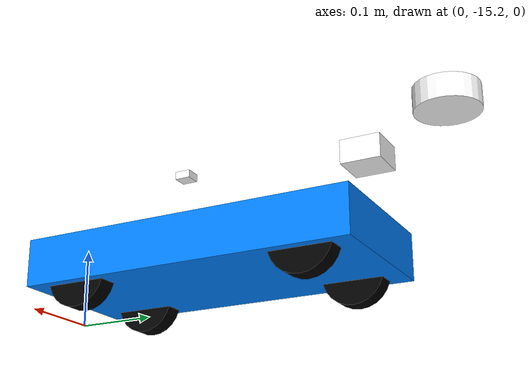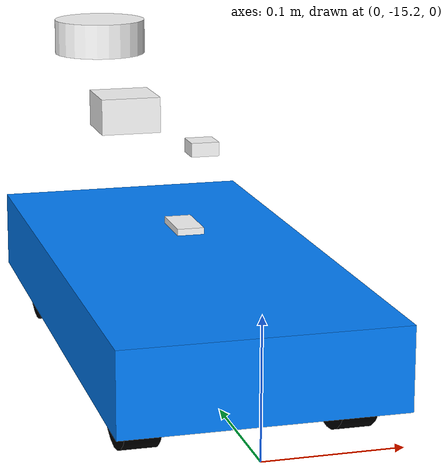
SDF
<sdf version='1.11'>
  <model name='shixi_car'>
    <!-- base_link (车身主体)                          -->
    <link name='base_link'>
      <inertial>
        <pose>0.0029268292682926851 0 0.0021463414634146361 0 0 0</pose>
        <mass>2.0499999999999989</mass>
        <inertia>
          <ixx>0.0077635560975609762</ixx>
          <ixy>0</ixy>
          <ixz>-0.00070712195121951224</ixz>
          <iyy>0.033245995121951213</iyy>
          <iyz>0</iyz>
          <izz>0.038817439024390242</izz>
        </inertia>
      </inertial>
      <collision name='base_link_collision'>
        <pose>0 0 0 0 0 0</pose>
        <geometry>
          <box>
            <size>0.43 0.2 0.06</size>
          </box>
        </geometry>
      </collision>
      <visual name='base_link_visual'>
        <pose>0 0 0 0 0 0</pose>
        <geometry>
          <box>
            <size>0.43 0.2 0.06</size>
          </box>
        </geometry>
        <material>
          <diffuse>0 0.5 1 1</diffuse>
          <ambient>0 0.5 1 1</ambient>
        </material>
      </visual>
    </link>

    <!-- 传感器独立 Links (不再被 lump 进 base_link)    -->

    <!-- camera_link -->
    <link name='camera_link'>
      <pose relative_to='camera_joint'>0 0 0 0 0 0</pose>
      <inertial>
        <pose>0 0 0 0 0 0</pose>
        <mass>0.01</mass>
        <inertia>
          <ixx>1e-6</ixx>
          <ixy>0</ixy>
          <ixz>0</ixz>
          <iyy>1e-6</iyy>
          <iyz>0</iyz>
          <izz>1e-6</izz>
        </inertia>
      </inertial>
      <visual name='camera_link_visual'>
        <pose>0 0 0 0 0 0</pose>
        <geometry>
          <box>
            <size>0.050000000000000003 0.050000000000000003 0.029999999999999999</size>
          </box>
        </geometry>
        <material>
          <diffuse>1 1 1 1</diffuse>
          <ambient>1 1 1 1</ambient>
        </material>
      </visual>
      <sensor name='camera' type='camera'>
        <always_on>true</always_on>
        <update_rate>15</update_rate>
        <pose>0 0 0 0 0 0</pose>
        <camera>
          <image>
            <width>640</width>
            <height>480</height>
            <format>R8G8B8</format>
          </image>
          <distortion>
            <k1>0</k1>
            <k2>0</k2>
            <k3>0</k3>
            <p1>0</p1>
            <p2>0</p2>
            <center>0.5 0.5</center>
          </distortion>
          <horizontal_fov>1.0469999999999999</horizontal_fov>
          <clip>
            <near>0.10000000000000001</near>
            <far>100</far>
          </clip>
        </camera>
      </sensor>
    </link>

    <!-- lidar_link -->
    <link name='lidar_link'>
      <pose relative_to='lidar_joint'>0 0 0 0 0 0</pose>
      <inertial>
        <pose>0 0 0 0 0 0</pose>
        <mass>0.01</mass>
        <inertia>
          <ixx>1e-6</ixx>
          <ixy>0</ixy>
          <ixz>0</ixz>
          <iyy>1e-6</iyy>
          <iyz>0</iyz>
          <izz>1e-6</izz>
        </inertia>
      </inertial>
      <visual name='lidar_link_visual'>
        <pose>0 0 0 0 0 0</pose>
        <geometry>
          <cylinder>
            <length>0.029999999999999999</length>
            <radius>0.040000000000000001</radius>
          </cylinder>
        </geometry>
        <material>
          <diffuse>1 1 1 1</diffuse>
          <ambient>1 1 1 1</ambient>
        </material>
      </visual>
      <sensor name='lidar' type='lidar'>
        <always_on>true</always_on>
        <update_rate>10</update_rate>
        <pose>0 0 0 0 0 0</pose>
        <lidar>
          <scan>
            <horizontal>
              <samples>360</samples>
              <resolution>1</resolution>
              <min_angle>-3.1415899999999999</min_angle>
              <max_angle>3.1415899999999999</max_angle>
            </horizontal>
            <vertical>
              <samples>1</samples>
              <resolution>0.10000000000000001</resolution>
              <min_angle>-0.52359880000000003</min_angle>
              <max_angle>0.52359880000000003</max_angle>
            </vertical>
          </scan>
          <range>
            <min>0.10000000000000001</min>
            <max>10</max>
            <resolution>0.01</resolution>
          </range>
        </lidar>
      </sensor>
    </link>

    <!-- gps_link -->
    <link name='gps_link'>
      <pose relative_to='gps_joint'>0 0 0 0 0 0</pose>
      <inertial>
        <pose>0 0 0 0 0 0</pose>
        <mass>0.01</mass>
        <inertia>
          <ixx>1e-6</ixx>
          <ixy>0</ixy>
          <ixz>0</ixz>
          <iyy>1e-6</iyy>
          <iyz>0</iyz>
          <izz>1e-6</izz>
        </inertia>
      </inertial>
      <visual name='gps_link_visual'>
        <pose>0 0 0 0 0 0</pose>
        <geometry>
          <box>
            <size>0.040000000000000001 0.02 0.0050000000000000001</size>
          </box>
        </geometry>
        <material>
          <diffuse>1 1 1 1</diffuse>
          <ambient>1 1 1 1</ambient>
        </material>
      </visual>
      <sensor name='gps' type='navsat'>
        <always_on>true</always_on>
        <update_rate>10</update_rate>
        <pose>0 0 0 0 0 0</pose>
        <navsat/>
      </sensor>
    </link>

    <!-- imu_link -->
    <link name='imu_link'>
      <pose relative_to='imu_joint'>0 0 0 0 0 0</pose>
      <inertial>
        <pose>0 0 0 0 0 0</pose>
        <mass>0.01</mass>
        <inertia>
          <ixx>1e-6</ixx>
          <ixy>0</ixy>
          <ixz>0</ixz>
          <iyy>1e-6</iyy>
          <iyz>0</iyz>
          <izz>1e-6</izz>
        </inertia>
      </inertial>
      <visual name='imu_link_visual'>
        <pose>0 0 0 0 0 0</pose>
        <geometry>
          <box>
            <size>0.029999999999999999 0.029999999999999999 0.01</size>
          </box>
        </geometry>
        <material>
          <diffuse>1 1 1 1</diffuse>
          <ambient>1 1 1 1</ambient>
        </material>
      </visual>
      <sensor name='imu' type='imu'>
        <always_on>true</always_on>
        <update_rate>10</update_rate>
        <pose>0 0 0 0 0 0</pose>
        <imu>
          <angular_velocity>
            <x>
              <noise type='none'/>
            </x>
            <y>
              <noise type='none'/>
            </y>
            <z>
              <noise type='none'/>
            </z>
          </angular_velocity>
          <linear_acceleration>
            <x>
              <noise type='none'/>
            </x>
            <y>
              <noise type='none'/>
            </y>
            <z>
              <noise type='none'/>
            </z>
          </linear_acceleration>
        </imu>
      </sensor>
    </link>

    <!-- magnetometer_link -->
    <link name='magnetometer_link'>
      <pose relative_to='magnetometer_joint'>0 0 0 0 0 0</pose>
      <inertial>
        <pose>0 0 0 0 0 0</pose>
        <mass>0.01</mass>
        <inertia>
          <ixx>1e-6</ixx>
          <ixy>0</ixy>
          <ixz>0</ixz>
          <iyy>1e-6</iyy>
          <iyz>0</iyz>
          <izz>1e-6</izz>
        </inertia>
      </inertial>
      <visual name='magnetometer_link_visual'>
        <pose>0 0 0 0 0 0</pose>
        <geometry>
          <box>
            <size>0.02 0.02 0.01</size>
          </box>
        </geometry>
        <material>
          <diffuse>1 1 1 1</diffuse>
          <ambient>1 1 1 1</ambient>
        </material>
      </visual>
      <sensor name='magnetometer' type='magnetometer'>
        <always_on>true</always_on>
        <update_rate>10</update_rate>
        <pose>0 0 0 0 0 0</pose>
        <magnetometer/>
      </sensor>
    </link>

    <!-- 传感器固定关节 (连接各传感器 link 到 base_link) -->
    <joint name='camera_joint' type='fixed'>
      <pose relative_to='base_link'>0.20000000000000001 0 0.10000000000000001 0 0 0</pose>
      <parent>base_link</parent>
      <child>camera_link</child>
    </joint>

    <joint name='lidar_joint' type='fixed'>
      <pose relative_to='base_link'>0.29999999999999999 0 0.14999999999999999 0 0 0</pose>
      <parent>base_link</parent>
      <child>lidar_link</child>
    </joint>

    <joint name='gps_joint' type='fixed'>
      <pose relative_to='base_link'>0 0 0.050000000000000003 0 0 0</pose>
      <parent>base_link</parent>
      <child>gps_link</child>
    </joint>

    <joint name='imu_joint' type='fixed'>
      <pose relative_to='base_link'>0.050000000000000003 0 0.02 0 0 0</pose>
      <parent>base_link</parent>
      <child>imu_link</child>
    </joint>

    <joint name='magnetometer_joint' type='fixed'>
      <pose relative_to='base_link'>-0.05 0 0.12 0 0 0</pose>
      <parent>base_link</parent>
      <child>magnetometer_link</child>
    </joint>

    <!-- 车轮 joints 和 links                         -->
    <joint name='fl_wheel_joint' type='revolute'>
      <pose relative_to='base_link'>0.14999999999999999 0.074999999999999997 -0.02 0 0 0</pose>
      <parent>base_link</parent>
      <child>fl_wheel_link</child>
      <axis>
        <xyz>0 1 0</xyz>
        <limit>
          <lower>-inf</lower>
          <upper>inf</upper>
        </limit>
        <dynamics>
          <damping>0.050000000000000003</damping>
          <friction>0.10000000000000001</friction>
          <spring_reference>0</spring_reference>
          <spring_stiffness>0</spring_stiffness>
        </dynamics>
      </axis>
    </joint>
    <link name='fl_wheel_link'>
      <pose relative_to='fl_wheel_joint'>0 0 0 0 0 0</pose>
      <inertial>
        <pose>0 0 0 0 0 0</pose>
        <mass>0.14999999999999999</mass>
        <inertia>
          <ixx>0.00012</ixx>
          <ixy>0</ixy>
          <ixz>0</ixz>
          <iyy>6.7999999999999999e-05</iyy>
          <iyz>0</iyz>
          <izz>6.7999999999999999e-05</izz>
        </inertia>
      </inertial>
      <collision name='fl_wheel_link_collision'>
        <pose>0 0 0 1.5708 0 0</pose>
        <geometry>
          <cylinder>
            <length>0.025000000000000001</length>
            <radius>0.040000000000000001</radius>
          </cylinder>
        </geometry>
      </collision>
      <visual name='fl_wheel_link_visual'>
        <pose>0 0 0 1.5708 0 0</pose>
        <geometry>
          <cylinder>
            <length>0.025000000000000001</length>
            <radius>0.040000000000000001</radius>
          </cylinder>
        </geometry>
        <material>
          <diffuse>0 0 0 1</diffuse>
          <ambient>0 0 0 1</ambient>
        </material>
      </visual>
    </link>

    <joint name='fr_wheel_joint' type='revolute'>
      <pose relative_to='base_link'>0.14999999999999999 -0.074999999999999997 -0.02 0 0 0</pose>
      <parent>base_link</parent>
      <child>fr_wheel_link</child>
      <axis>
        <xyz>0 1 0</xyz>
        <limit>
          <lower>-inf</lower>
          <upper>inf</upper>
        </limit>
        <dynamics>
          <damping>0.050000000000000003</damping>
          <friction>0.10000000000000001</friction>
          <spring_reference>0</spring_reference>
          <spring_stiffness>0</spring_stiffness>
        </dynamics>
      </axis>
    </joint>
    <link name='fr_wheel_link'>
      <pose relative_to='fr_wheel_joint'>0 0 0 0 0 0</pose>
      <inertial>
        <pose>0 0 0 0 0 0</pose>
        <mass>0.14999999999999999</mass>
        <inertia>
          <ixx>0.00012</ixx>
          <ixy>0</ixy>
          <ixz>0</ixz>
          <iyy>6.7999999999999999e-05</iyy>
          <iyz>0</iyz>
          <izz>6.7999999999999999e-05</izz>
        </inertia>
      </inertial>
      <collision name='fr_wheel_link_collision'>
        <pose>0 0 0 1.5708 0 0</pose>
        <geometry>
          <cylinder>
            <length>0.025000000000000001</length>
            <radius>0.040000000000000001</radius>
          </cylinder>
        </geometry>
      </collision>
      <visual name='fr_wheel_link_visual'>
        <pose>0 0 0 1.5708 0 0</pose>
        <geometry>
          <cylinder>
            <length>0.025000000000000001</length>
            <radius>0.040000000000000001</radius>
          </cylinder>
        </geometry>
        <material>
          <diffuse>0 0 0 1</diffuse>
          <ambient>0 0 0 1</ambient>
        </material>
      </visual>
    </link>

    <joint name='rl_wheel_joint' type='revolute'>
      <pose relative_to='base_link'>-0.14999999999999999 0.074999999999999997 -0.02 0 0 0</pose>
      <parent>base_link</parent>
      <child>rl_wheel_link</child>
      <axis>
        <xyz>0 1 0</xyz>
        <limit>
          <lower>-inf</lower>
          <upper>inf</upper>
        </limit>
        <dynamics>
          <damping>0.050000000000000003</damping>
          <friction>0.10000000000000001</friction>
          <spring_reference>0</spring_reference>
          <spring_stiffness>0</spring_stiffness>
        </dynamics>
      </axis>
    </joint>
    <link name='rl_wheel_link'>
      <pose relative_to='rl_wheel_joint'>0 0 0 0 0 0</pose>
      <inertial>
        <pose>0 0 0 0 0 0</pose>
        <mass>0.14999999999999999</mass>
        <inertia>
          <ixx>0.00012</ixx>
          <ixy>0</ixy>
          <ixz>0</ixz>
          <iyy>6.7999999999999999e-05</iyy>
          <iyz>0</iyz>
          <izz>6.7999999999999999e-05</izz>
        </inertia>
      </inertial>
      <collision name='rl_wheel_link_collision'>
        <pose>0 0 0 1.5708 0 0</pose>
        <geometry>
          <cylinder>
            <length>0.025000000000000001</length>
            <radius>0.040000000000000001</radius>
          </cylinder>
        </geometry>
      </collision>
      <visual name='rl_wheel_link_visual'>
        <pose>0 0 0 1.5708 0 0</pose>
        <geometry>
          <cylinder>
            <length>0.025000000000000001</length>
            <radius>0.040000000000000001</radius>
          </cylinder>
        </geometry>
        <material>
          <diffuse>0 0 0 1</diffuse>
          <ambient>0 0 0 1</ambient>
        </material>
      </visual>
    </link>

    <joint name='rr_wheel_joint' type='revolute'>
      <pose relative_to='base_link'>-0.14999999999999999 -0.074999999999999997 -0.02 0 0 0</pose>
      <parent>base_link</parent>
      <child>rr_wheel_link</child>
      <axis>
        <xyz>0 1 0</xyz>
        <limit>
          <lower>-inf</lower>
          <upper>inf</upper>
        </limit>
        <dynamics>
          <damping>0.050000000000000003</damping>
          <friction>0.10000000000000001</friction>
          <spring_reference>0</spring_reference>
          <spring_stiffness>0</spring_stiffness>
        </dynamics>
      </axis>
    </joint>
    <link name='rr_wheel_link'>
      <pose relative_to='rr_wheel_joint'>0 0 0 0 0 0</pose>
      <inertial>
        <pose>0 0 0 0 0 0</pose>
        <mass>0.14999999999999999</mass>
        <inertia>
          <ixx>0.00012</ixx>
          <ixy>0</ixy>
          <ixz>0</ixz>
          <iyy>6.7999999999999999e-05</iyy>
          <iyz>0</iyz>
          <izz>6.7999999999999999e-05</izz>
        </inertia>
      </inertial>
      <collision name='rr_wheel_link_collision'>
        <pose>0 0 0 1.5708 0 0</pose>
        <geometry>
          <cylinder>
            <length>0.025000000000000001</length>
            <radius>0.040000000000000001</radius>
          </cylinder>
        </geometry>
      </collision>
      <visual name='rr_wheel_link_visual'>
        <pose>0 0 0 1.5708 0 0</pose>
        <geometry>
          <cylinder>
            <length>0.025000000000000001</length>
            <radius>0.040000000000000001</radius>
          </cylinder>
        </geometry>
        <material>
          <diffuse>0 0 0 1</diffuse>
          <ambient>0 0 0 1</ambient>
        </material>
      </visual>
    </link>

    <!-- 模型初始位姿                                  -->
    <pose>0 -15 0.059999999999999998 0 0 1.5708</pose>

    <!-- AckermannSteering 插件                       -->
    <plugin name='gz::sim::systems::AckermannSteering' filename='gz-sim-ackermann-steering-system'>
      <topic>/cmd_vel</topic>
      <wheel_base>0.3</wheel_base>
      <wheel_track>0.15</wheel_track>
      <max_steering_angle>0.7</max_steering_angle>
      <wheel_radius>0.04</wheel_radius>
      <rear_left_joint>rl_wheel_joint</rear_left_joint>
      <rear_right_joint>rr_wheel_joint</rear_right_joint>
      <front_left_joint>fl_wheel_joint</front_left_joint>
      <front_right_joint>fr_wheel_joint</front_right_joint>
      <odom_topic>/odometry</odom_topic>
      <odom_frame>odom</odom_frame>
      <robot_base_frame>base_link</robot_base_frame>
      <update_rate>30.0</update_rate>
      <max_wheel_torque>20.0</max_wheel_torque>
      <max_wheel_acceleration>1.0</max_wheel_acceleration>
    </plugin>

    <!-- 传感器系统插件（必须在模型级加载，不能在世界级加载） -->
    <plugin filename='gz-sim-sensors-system' name='gz::sim::systems::Sensors'>
      <render_engine>ogre</render_engine>
    </plugin>
    <plugin filename='gz-sim-imu-system' name='gz::sim::systems::Imu'/>
    <plugin filename='gz-sim-navsat-system' name='gz::sim::systems::NavSat'/>
    <plugin filename='gz-sim-magnetometer-system' name='gz::sim::systems::Magnetometer'/>

  </model>
</sdf>
